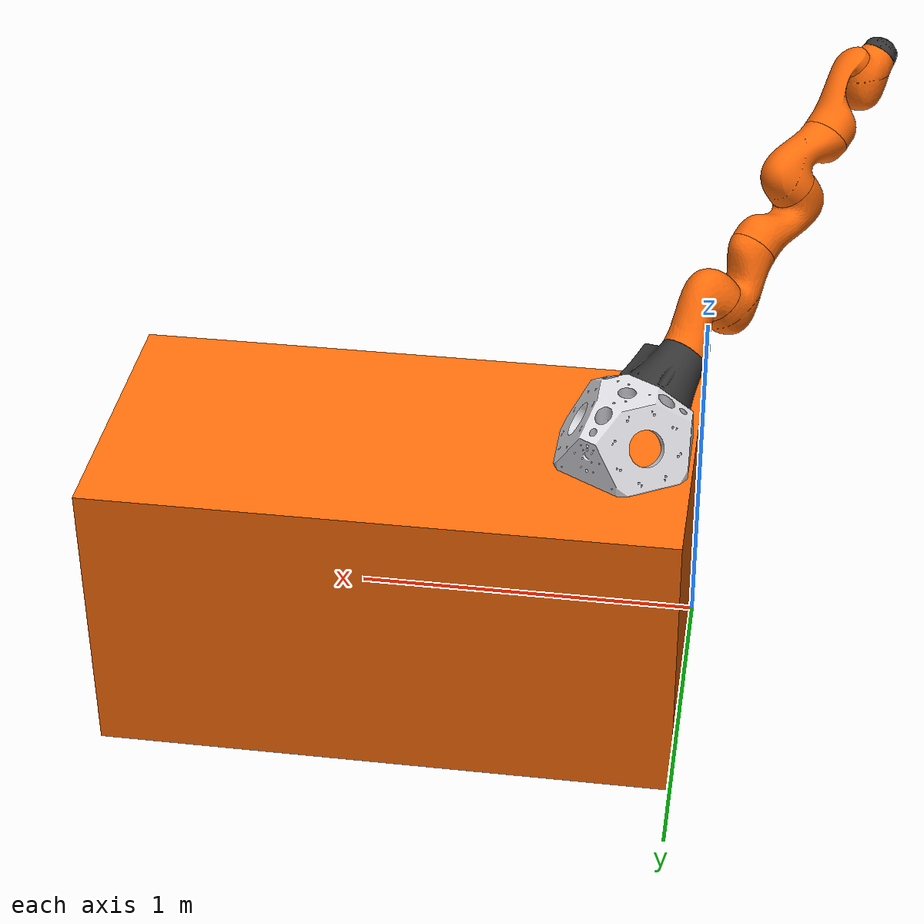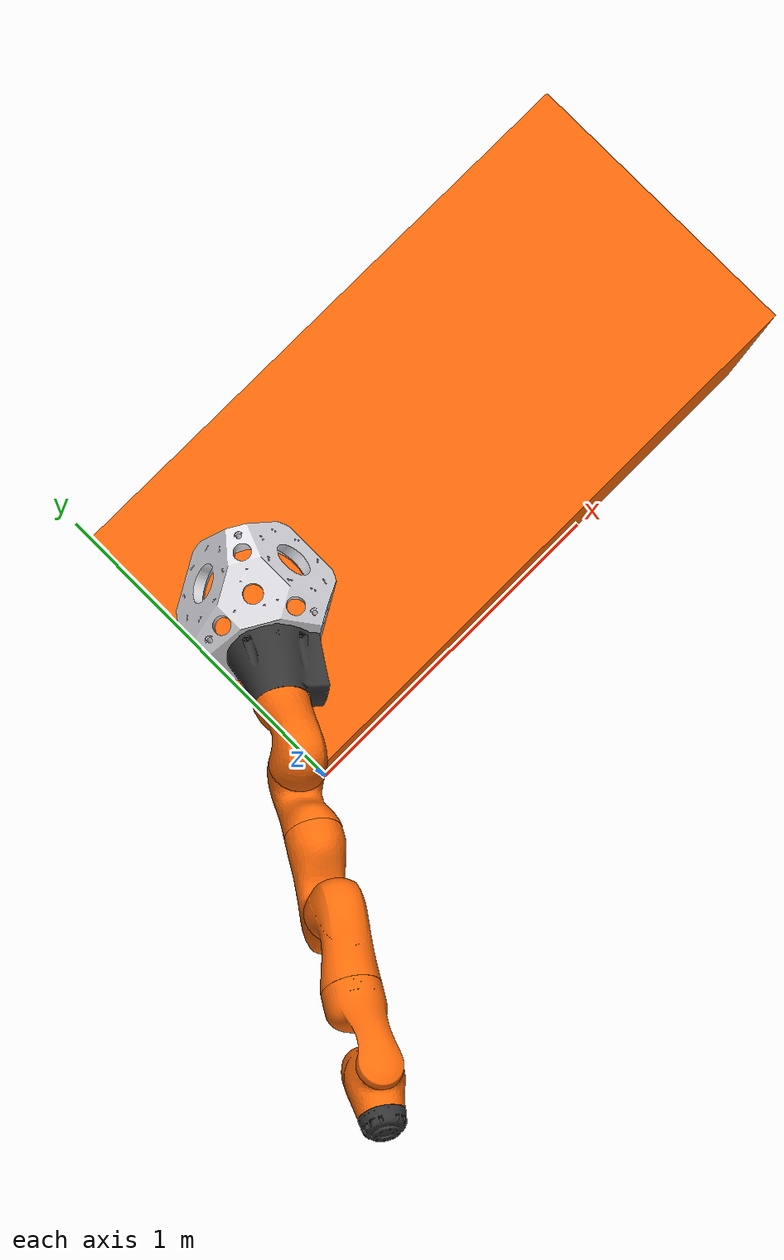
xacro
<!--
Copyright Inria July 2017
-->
<?xml version="1.0"?>
<robot xmlns:xacro="http://www.ros.org/wiki/xacro" name="bh_robot">
  <!-- Variables -->
  <!-- If we have a single robot we want to fully publish it. When we have dual arm we only want to parse the macro and include it there. -->
  <xacro:arg name="publish_robot" default="true"/>
  <xacro:arg name="hardware_interface" default="PositionJointInterface"/>
  <xacro:arg name="robot_name" default="bh"/>

  <xacro:macro name="iiwa_piston_gripper" params="*origin publish_robot hardware_interface robot_prefix">
    <!-- Variables -->
    <xacro:arg name="publish_robot" default="true"/>
    <xacro:arg name="hardware_interface" default="PositionJointInterface"/>
    <xacro:arg name="robot_prefix" default="bh"/>

    <!-- Include models -->
    <xacro:include filename="$(find iiwa_description)/urdf/iiwa7.xacro"/>

    <!-- Load the calibration parameters -->
    <xacro:include filename="$(find bh_description)/calibration/robot_cal.xacro"/>

    <!-- If we have a single robot we want to fully publish it. When we have dual arm we only want to parse the macro. -->
    <xacro:if value="$(arg publish_robot)">
      <xacro:include filename="$(find bh_description)/urdf/iiwa_table.urdf.xacro"/>
      <xacro:include filename="$(find bh_description)/urdf/iiwa_mount/iiwa_torso.urdf.xacro"/>

      <xacro:include filename="$(find iiwa_description)/urdf/materials.xacro" />
      <!-- Insert the BASE -->
      <link name="world"/>
      <iiwa_table parent="world">
        <origin xyz="0 0 0" rpy="0 0 0"/>
      </iiwa_table>

      <!-- Insert triangular mount -->
      <iiwa_torso parent="torso_origin">
        <origin xyz="0 0 0" rpy="0 0 ${PI}"/>
      </iiwa_torso>
    </xacro:if>

    <!-- Insert the KUKA IIWA -->
    <iiwa7 hardware_interface="$(arg hardware_interface)" parent="iiwa_torso_left" collision_postfix="" robot_name="$(arg robot_prefix)">
      <origin xyz="${cal_base_to_bh_xyz}" rpy="${cal_base_to_bh_rpy}"/>
    </iiwa7>

  </xacro:macro>

  <xacro:if value="$(arg publish_robot)">
    <iiwa_piston_gripper hardware_interface="$(arg hardware_interface)" robot_prefix="$(arg robot_name)" publish_robot="$(arg publish_robot)">
      <origin xyz="0 0 0" rpy="0 0 0"/>
    </iiwa_piston_gripper>
  </xacro:if>
</robot>

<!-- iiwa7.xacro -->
<robot xmlns:xacro="http://www.ros.org/wiki/xacro">

  <!-- Import all Gazebo-customization elements, including Gazebo colors -->
  <xacro:include filename="$(find iiwa_description)/urdf/iiwa.gazebo.xacro" />
  <!-- Import Transmissions -->
  <xacro:include filename="$(find iiwa_description)/urdf/iiwa.transmission.xacro" />
  <!-- Include Utilities -->
  <xacro:include filename="$(find iiwa_description)/urdf/utilities.xacro" />

  <!-- some constants -->
  <xacro:property name="safety_controller_k_pos" value="100" />
  <xacro:property name="safety_controller_k_vel" value="2" />
  <xacro:property name="joint_damping" value="0.5" />
  <xacro:property name="max_effort" value="300"/>
  <xacro:property name="max_velocity" value="10"/>

  <xacro:macro name="iiwa7" params="parent hardware_interface robot_name *origin">

    <!--joint between {parent} and link_0-->
    <joint name="${parent}_${robot_name}_joint" type="fixed">
      <xacro:insert_block name="origin"/>
      <parent link="${parent}"/>
      <child link="${robot_name}_link_0"/>
    </joint>

    <link name="${robot_name}_link_0">
      <inertial>
        <origin xyz="-0.1 0 0.07" rpy="0 0 0"/>
        <mass value="5"/>
        <inertia ixx="0.05"  ixy="0"  ixz="0" iyy="0.06" iyz="0" izz="0.03" />
      </inertial>

      <visual>
        <origin xyz="0 0 0" rpy="0 0 0"/>
        <geometry>
          <mesh filename="package://iiwa_description/meshes/iiwa7/visual/link_0.stl"/>
        </geometry>
        <material name="Grey"/>
      </visual>

      <collision>
        <origin xyz="0 0 0" rpy="0 0 0"/>
        <geometry>
          <mesh filename="package://iiwa_description/meshes/iiwa7/collision/link_0.stl"/>
        </geometry>
      </collision>

    </link>

    <!-- joint between link_0 and link_1 -->
    <joint name="${robot_name}_joint_1" type="revolute">
      <parent link="${robot_name}_link_0"/>
      <child link="${robot_name}_link_1"/>
      <origin xyz="0 0 0.15" rpy="0 0 0"/>
      <axis xyz="0 0 1"/>
      <limit lower="${-170 * PI / 180}" upper="${170 * PI / 180}"
             effort="${max_effort}" velocity="${max_velocity}" />
      <safety_controller soft_lower_limit="${-168 * PI / 180}"
                         soft_upper_limit="${168 * PI / 180}"
                         k_position="${safety_controller_k_pos}"
                         k_velocity="${safety_controller_k_vel}"/>
      <dynamics damping="${joint_damping}"/>
    </joint>

    <link name="${robot_name}_link_1">
      <inertial>
        <origin xyz="0 -0.03 0.12" rpy="0 0 0"/>
        <mass value="3.4525"/>
        <inertia ixx="0.02183"  ixy="0"  ixz="0" iyy="0.007703" iyz="-0.003887" izz="0.02083" />
      </inertial>
      <visual>
        <origin xyz="0 0 0.0075" rpy="0 0 0"/>
        <geometry>
          <mesh filename="package://iiwa_description/meshes/iiwa7/visual/link_1.stl"/>
        </geometry>
        <material name="Orange"/>
      </visual>
      <collision>
        <origin xyz="0 0 0.0075" rpy="0 0 0"/>
        <geometry>
          <mesh filename="package://iiwa_description/meshes/iiwa7/collision/link_1.stl"/>
        </geometry>
      </collision>
    </link>

    <joint name="${robot_name}_joint_2" type="revolute">
      <parent link="${robot_name}_link_1"/>
      <child link="${robot_name}_link_2"/>
      <origin xyz="0 0 0.19" rpy="${PI / 2}   0 ${PI}"/>
      <axis xyz="0 0 1"/>
      <limit lower="${-120 * PI / 180}" upper="${120 * PI / 180}"
             effort="${max_effort}" velocity="${max_velocity}" />
      <safety_controller soft_lower_limit="${-118 * PI / 180}"
                         soft_upper_limit="${118 * PI / 180}"
                         k_position="${safety_controller_k_pos}"
                         k_velocity="${safety_controller_k_vel}"/>
      <dynamics damping="${joint_damping}"/>
    </joint>

    <link name="${robot_name}_link_2">
      <inertial>
        <origin xyz="0.0003 0.059 0.042" rpy="0 0 0"/>
        <mass value="3.4821"/>
        <inertia ixx="0.02076"  ixy="0"  ixz="-0.003626" iyy="0.02179" iyz="0" izz="0.00779" />
      </inertial>
      <visual>
        <origin xyz="0 0 0" rpy="0 0 0"/>
        <geometry>
          <mesh filename="package://iiwa_description/meshes/iiwa7/visual/link_2.stl"/>
        </geometry>
        <material name="Orange"/>
      </visual>

      <collision>
        <origin xyz="0 0 0" rpy="0 0 0"/>
        <geometry>
          <mesh filename="package://iiwa_description/meshes/iiwa7/collision/link_2.stl"/>
        </geometry>
      </collision>
    </link>

    <joint name="${robot_name}_joint_3" type="revolute">
      <parent link="${robot_name}_link_2"/>
      <child link="${robot_name}_link_3"/>
      <origin xyz="0 0.21 0" rpy="${PI / 2} 0 ${PI}"/>
      <axis xyz="0 0 1"/>
      <limit lower="${-170 * PI / 180}" upper="${170 * PI / 180}"
             effort="${max_effort}" velocity="${max_velocity}" />
      <safety_controller soft_lower_limit="${-168 * PI / 180}"
                         soft_upper_limit="${168 * PI / 180}"
                         k_position="${safety_controller_k_pos}"
                         k_velocity="${safety_controller_k_vel}"/>
      <dynamics damping="${joint_damping}"/>
    </joint>

    <link name="${robot_name}_link_3">
      <inertial>
        <origin xyz="0 0.03 0.13" rpy="0 0 0"/>
        <mass value="4.05623"/>
        <inertia ixx="0.03204"  ixy="0"  ixz="0" iyy="0.00972" iyz="0.006227" izz="0.03042" />
      </inertial>

      <visual>
        <origin xyz="0 0 -0.026" rpy="0 0 0"/>
        <geometry>
          <mesh filename="package://iiwa_description/meshes/iiwa7/visual/link_3.stl"/>
        </geometry>
        <material name="Orange"/>
      </visual>

      <collision>
        <origin xyz="0 0 -0.026" rpy="0 0 0"/>
        <geometry>
          <mesh filename="package://iiwa_description/meshes/iiwa7/collision/link_3.stl"/>
        </geometry>
      </collision>

    </link>

    <joint name="${robot_name}_joint_4" type="revolute">
      <parent link="${robot_name}_link_3"/>
      <child link="${robot_name}_link_4"/>
      <origin xyz="0 0 0.19" rpy="${PI / 2} 0 0"/>
      <axis xyz="0 0 1"/>
      <limit lower="${-120 * PI / 180}" upper="${120 * PI / 180}"
             effort="${max_effort}" velocity="${max_velocity}" />
      <safety_controller soft_lower_limit="${-118 * PI / 180}"
                         soft_upper_limit="${118 * PI / 180}"
                         k_position="${safety_controller_k_pos}"
                         k_velocity="${safety_controller_k_vel}"/>
      <dynamics damping="${joint_damping}"/>
    </joint>

    <link name="${robot_name}_link_4">
      <inertial>
        <origin xyz="0 0.067 0.034" rpy="0 0 0"/>
        <mass value="3.4822"/>
        <inertia ixx="0.02178"  ixy="0"  ixz="0" iyy="0.02075" iyz="-0.003625" izz="0.007785" />
      </inertial>

      <visual>
        <origin xyz="0 0 0" rpy="0 0 0"/>
        <geometry>
          <mesh filename="package://iiwa_description/meshes/iiwa7/visual/link_4.stl"/>
        </geometry>
        <material name="Orange"/>
      </visual>

      <collision>
        <origin xyz="0 0 0" rpy="0 0 0"/>
        <geometry>
          <mesh filename="package://iiwa_description/meshes/iiwa7/collision/link_4.stl"/>
        </geometry>
      </collision>
    </link>

    <joint name="${robot_name}_joint_5" type="revolute">
      <parent link="${robot_name}_link_4"/>
      <child link="${robot_name}_link_5"/>
      <origin xyz="0 0.21 0" rpy="${-PI / 2} ${PI} 0"/>
      <axis xyz="0 0 1"/>
      <limit lower="${-170 * PI / 180}" upper="${170 * PI / 180}"
             effort="${max_effort}" velocity="${max_velocity}" />
      <safety_controller soft_lower_limit="${-168 * PI / 180}"
                         soft_upper_limit="${168 * PI / 180}"
                         k_position="${safety_controller_k_pos}"
                         k_velocity="${safety_controller_k_vel}"/>
      <dynamics damping="${joint_damping}"/>
    </joint>

    <link name="${robot_name}_link_5">
      <inertial>
        <origin xyz="0.0001 0.021 0.076" rpy="0 0 0"/>
        <mass value="2.1633"/>
        <inertia ixx="0.01287"  ixy="0"  ixz="0" iyy="0.005708" iyz="-0.003946" izz="0.01112" />
      </inertial>

      <visual>
        <origin xyz="0 0 -0.026" rpy="0 0 0"/>
        <geometry>
          <mesh filename="package://iiwa_description/meshes/iiwa7/visual/link_5.stl"/>
        </geometry>
        <material name="Orange"/>
      </visual>

      <collision>
        <origin xyz="0 0 -0.026" rpy="0 0 0"/>
        <geometry>
          <mesh filename="package://iiwa_description/meshes/iiwa7/collision/link_5.stl"/>
        </geometry>
      </collision>
    </link>

    <joint name="${robot_name}_joint_6" type="revolute">
      <parent link="${robot_name}_link_5"/>
      <child link="${robot_name}_link_6"/>
      <origin xyz="0 0.06070 0.19" rpy="${PI / 2} 0 0"/>
      <axis xyz="0 0 1"/>
      <limit lower="${-120 * PI / 180}" upper="${120 * PI / 180}"
             effort="${max_effort}" velocity="${max_velocity}" />
      <safety_controller soft_lower_limit="${-118 * PI / 180}"
                         soft_upper_limit="${118 * PI / 180}"
                         k_position="${safety_controller_k_pos}"
                         k_velocity="${safety_controller_k_vel}"/>
      <dynamics damping="${joint_damping}"/>
    </joint>

    <link name="${robot_name}_link_6">
      <inertial>
        <origin xyz="0 0.0006 0.0004" rpy="0 0 0"/>
        <mass value="2.3466"/>
        <inertia ixx="0.006509"  ixy="0"  ixz="0" iyy="0.006259" iyz="0.00031891" izz="0.004527" />
      </inertial>

      <visual>
        <origin xyz="0 0 0" rpy="0 0 0"/>
        <geometry>
          <mesh filename="package://iiwa_description/meshes/iiwa7/visual/link_6.stl"/>
        </geometry>
        <material name="Orange"/>
      </visual>

      <collision>
        <origin xyz="0 0 0" rpy="0 0 0"/>
        <geometry>
          <mesh filename="package://iiwa_description/meshes/iiwa7/collision/link_6.stl"/>
        </geometry>
      </collision>
    </link>

    <joint name="${robot_name}_joint_7" type="revolute">
      <parent link="${robot_name}_link_6"/>
      <child link="${robot_name}_link_7"/>
      <origin xyz="0 0.081 0.06070" rpy="${- PI / 2} ${PI} 0"/>
      <axis xyz="0 0 1"/>
      <limit lower="${-175 * PI / 180}" upper="${175 * PI / 180}"
             effort="${max_effort}" velocity="${max_velocity}" />
      <safety_controller soft_lower_limit="${-173 * PI / 180}"
                         soft_upper_limit="${173 * PI / 180}"
                         k_position="${safety_controller_k_pos}"
                         k_velocity="${safety_controller_k_vel}"/>
      <dynamics damping="${joint_damping}"/>
    </joint>

    <link name="${robot_name}_link_7">
      <inertial>
        <origin xyz="0 0 0.02" rpy="0 0 0"/>
        <mass value="3.129"/>
        <inertia ixx="0.01464"  ixy="0.0005912"  ixz="0" iyy="0.01465" iyz="0" izz="0.002872" />
      </inertial>

      <visual>
        <origin xyz="0 0 -0.0005" rpy="0 0 0"/>
        <geometry>
          <mesh filename="package://iiwa_description/meshes/iiwa7/visual/link_7.stl"/>
        </geometry>
        <material name="Grey"/>
      </visual>

      <collision>
        <origin xyz="0 0 -0.0005" rpy="0 0 0"/>
        <geometry>
          <mesh filename="package://iiwa_description/meshes/iiwa7/collision/link_7.stl"/>
        </geometry>
      </collision>
    </link>

    <joint name="${robot_name}_joint_ee" type="fixed">
      <parent link="${robot_name}_link_7"/>
      <child link="${robot_name}_link_ee"/>
      <origin xyz="0 0 0.045" rpy="0 0 0"/>
    </joint>

    <link name="${robot_name}_link_ee">
    </link>

    <!--Extensions -->
    <xacro:iiwa_gazebo robot_name="${robot_name}" />
    <xacro:iiwa_transmission hardware_interface="${hardware_interface}"/>

  </xacro:macro>

</robot>

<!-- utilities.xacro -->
<robot name="iiwa" xmlns:xacro="http://www.ros.org/wiki/xacro">

  <xacro:property name="PI" value="3.1415926535897931"/>

<!-- The following macros are adapted from the LWR 4 definitions of the RCPRG - https://github.com/RCPRG-ros-pkg/lwr_robot -->
  <!--Little helper macros to define the inertia matrix needed for links.-->
  <!--Cuboid-->
  <xacro:macro name="cuboid_inertia" params="width height length mass">
    <inertia ixx="${mass * (height * height + length * length) / 12)}"
             iyy="${mass * (width * width + length * length) / 12)}"
             izz="${mass * (width * width + height * height) / 12)}"
             ixy="0" iyz="0" ixz="0"/>
  </xacro:macro>

  <!--Cylinder: length is along the y-axis! -->
  <xacro:macro name="cylinder_inertia" params="radius length mass">
    <inertia ixx="${mass * (3 * radius * radius + length * length) / 12)}"
             iyy="${mass * radius* radius / 2)}"
             izz="${mass * (3 * radius * radius + length * length) / 12)}"
             ixy="0" iyz="0" ixz="0"/>
  </xacro:macro>

</robot>

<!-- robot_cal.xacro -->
<robot xmlns:xacro="http://www.ros.org/wiki/xacro">

  <!-- Transformation to bh (right arm)  -->
  <xacro:property name="cal_base_to_bh_xyz" value="0 0 0" />
  <xacro:property name="cal_base_to_bh_rpy" value="0 0 0" />

  <!-- Transformation to hh (left arm) -->
  <xacro:property name="cal_base_to_hh_xyz" value="0 0 0" />
  <xacro:property name="cal_base_to_hh_rpy" value="0 0 0" />

  <!-- schunk gripper -->
  <xacro:property name="cal_iiwa7_to_wsg_xyz" value="0 0 0" />
  <xacro:property name="cal_iiwa7_to_wsg_rpy" value="3.1415926 -1.570796327 0"  />

  <!-- Size of the chassis (just a box) -->
  <xacro:property name="chassis_size_x" value="0.65"/>
  <xacro:property name="chassis_size_y" value="0.58"/>
  <xacro:property name="chassis_size_z" value="0.42"/>
</robot>

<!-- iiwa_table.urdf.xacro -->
<robot name="hardware" xmlns:xacro="http://www.ros.org/wiki/xacro">
<!-- distance: 0 0 0.152 center of mass: 0.004 0.004 0.085 mass: 2.4 main gripper macro -->
<xacro:macro name="iiwa_table" params="parent *origin">
  <!-- Macro for the inertia of a box -->
  <xacro:macro name="box_inertia" params="x y z mass">
    <inertia ixx="${0.0833333 * mass * (y*y + z*z)}" ixy="0.0" ixz="0.0"
      iyy="${0.0833333 * mass * (x*x + z*z)}" iyz="0.0"
      izz="${0.0833333 * mass * (x*x + y*y)}" />
  </xacro:macro>

  <!-- table is height adjustable -->
  <xacro:property name="table_height" value="0.83" />
  <xacro:property name="table_width" value="0.8" />
  <xacro:property name="table_length" value="1.6" />
  <xacro:property name="table_frame_offset" value="0 0 ${table_height}" />

  <xacro:property name="plate_height" value="0.02" />
  <xacro:property name="plate_width" value="0.80" />
  <xacro:property name="plate_length" value="0.30" />

  <!-- retrieved from the manual -->
  <xacro:property name="iiwa_pin_distance" value="0.184" />

  <!--  Defines offset of the box representing the table -->
  <xacro:property name="box_offset" value="${table_length/2.} ${table_width/2.} ${table_height/2.}" />

  <joint name="footprint_joint" type="fixed">
    <parent link="${parent}"/>
    <child link = "base_link"/>
    <xacro:insert_block name="origin" />
  </joint>

  <joint name="table_origin_joint" type="fixed">
    <parent link="base_link"/>
    <child link = "table_origin"/>
    <origin xyz="${table_frame_offset}" />
  </joint>

  <joint name="torso_origin_joint" type="fixed">
    <parent link="table_origin"/>
    <child link = "torso_origin"/>
    <!-- x: 185mm from the CAD plus 1mm shift in mounting position y: centered half width of the table -->
    <origin xyz="0.186 ${table_width/2} 0" />
  </joint>

  <joint name="plate_1_inner_joint" type="fixed">
    <parent link="table_origin"/>
    <child link = "plate_1_inner"/>
    <origin xyz="${table_length-plate_length/2} ${0.102+iiwa_pin_distance/2} ${plate_height}" rpy="0 0 ${PI}" />
  </joint>

  <joint name="plate_2_inner_joint" type="fixed">
    <parent link="table_origin"/>
    <child link = "plate_2_inner"/>
    <origin xyz="${table_length-plate_length/2} ${plate_width-0.102-iiwa_pin_distance/2} ${plate_height}" rpy="0 0 ${PI}" />
  </joint>

  <link name="table_origin">
  </link>

  <link name="torso_origin">
  </link>

  <!-- this one is typically used -->
  <link name="plate_1_inner">
  </link>

  <!-- this one is typically used -->
  <link name="plate_2_inner">
  </link>

  <link name="base_link">
    <inertial>
      <origin xyz="${box_offset}" rpy="0 0 0"/>
      <mass value="100.0"/>
      <xacro:box_inertia x="${table_length}" y="${table_width}" z="${table_height}" mass="100.0"/>
    </inertial>
    <visual>
      <origin xyz="${box_offset}" rpy="0 0 0"/>
      <geometry>
        <box size="${table_length} ${table_width} ${table_height}"/>
      </geometry>
      <material name="Orange"/>
    </visual>
    <collision>
      <origin xyz="${box_offset}" rpy="0 0 0"/>
      <geometry>
        <box size="${table_length} ${table_width} ${table_height}"/>
      </geometry>
    </collision>
  </link>

</xacro:macro>
</robot>

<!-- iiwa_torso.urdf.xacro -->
<robot name="hardware" xmlns:xacro="http://www.ros.org/wiki/xacro">

<!-- It's apparently not possible to define properties inside a macro that should be available outside
     https://answers.ros.org/question/303529/xacro-properties/ -->
<xacro:property name="torso_left_xyz" value="0.065 0.1126 0.10074" />
<xacro:property name="torso_right_xyz" value="0.065 -0.1126 0.10074" />
<xacro:property name="torso_back_xyz" value="-0.13 0 0.10074" />

<xacro:macro name="iiwa_torso" params="parent *origin">
    <xacro:property name="mount_origin" value="0 0 0" />

    <joint name="iiwa_torso_base_joint" type="fixed">
            <parent link="${parent}" />
            <child link = "iiwa_torso_base" />
            <xacro:insert_block name="origin" />
    </joint>

    <joint name="iiwa_torso_left_joint" type="fixed">
            <parent link="iiwa_torso_base" />
            <child link = "iiwa_torso_left" />
            <origin xyz="${torso_left_xyz}" rpy="-1.01985341 -0.3007097 -0.70361386" />
    </joint>

    <joint name="iiwa_torso_right_joint" type="fixed">
            <parent link="iiwa_torso_base" />
            <child link = "iiwa_torso_right" />
            <origin xyz="${torso_right_xyz}" rpy="1.01985341 -0.3007097  0.70361386" />
    </joint>

    <joint name="iiwa_torso_back_joint" type="fixed">
            <parent link="iiwa_torso_base" />
            <child link = "iiwa_torso_back" />
            <origin xyz="${torso_back_xyz}" rpy="1.01985341 -0.3007097 -1.39078124" />
    </joint>

    <link name="iiwa_torso_left">
    </link>

    <link name="iiwa_torso_right">
    </link>

    <link name="iiwa_torso_back">
    </link>

    <link name="iiwa_torso_base">
        <inertial>
        <origin
            xyz="${mount_origin}" rpy="0 0 0" />
        <mass
            value="17.097" />
        <inertia
            ixx="0.231426028862462"
            ixy="3.4651505109641E-07"
            ixz="9.00820316949685E-07"
            iyy="0.352096317978007"
            iyz="1.23740976421988E-05"
            izz="0.231751030960783" />
        </inertial>
        <visual>
        <origin
            xyz="${mount_origin}" rpy="0 0 0" />
        <geometry>
            <mesh
            filename="package://bh_description/meshes/iiwa_mount/iiwa_torso.stl" />
        </geometry>
        <material name="grey">
            <color rgba="0.8667 0.86667 0.8902 1" />
        </material>
        </visual>
    </link>
</xacro:macro>
</robot>

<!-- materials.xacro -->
<robot>

  <material name="Black">
    <color rgba="0.0 0.0 0.0 1.0"/>
  </material>

  <material name="Blue">
    <color rgba="0.0 0.0 0.8 1.0"/>
  </material>

  <material name="Green">
    <color rgba="0.0 0.8 0.0 1.0"/>
  </material>

  <material name="Grey">
    <color rgba="0.2 0.2 0.2 1.0"/>
  </material>

  <material name="Orange">
    <color rgba="${255/255} ${108/255} ${10/255} 1.0"/>
  </material>

  <material name="Brown">
    <color rgba="${222/255} ${207/255} ${195/255} 1.0"/>
  </material>

  <material name="Red">
    <color rgba="0.8 0.0 0.0 1.0"/>
  </material>

  <material name="White">
    <color rgba="1.0 1.0 1.0 1.0"/>
  </material>

</robot>
